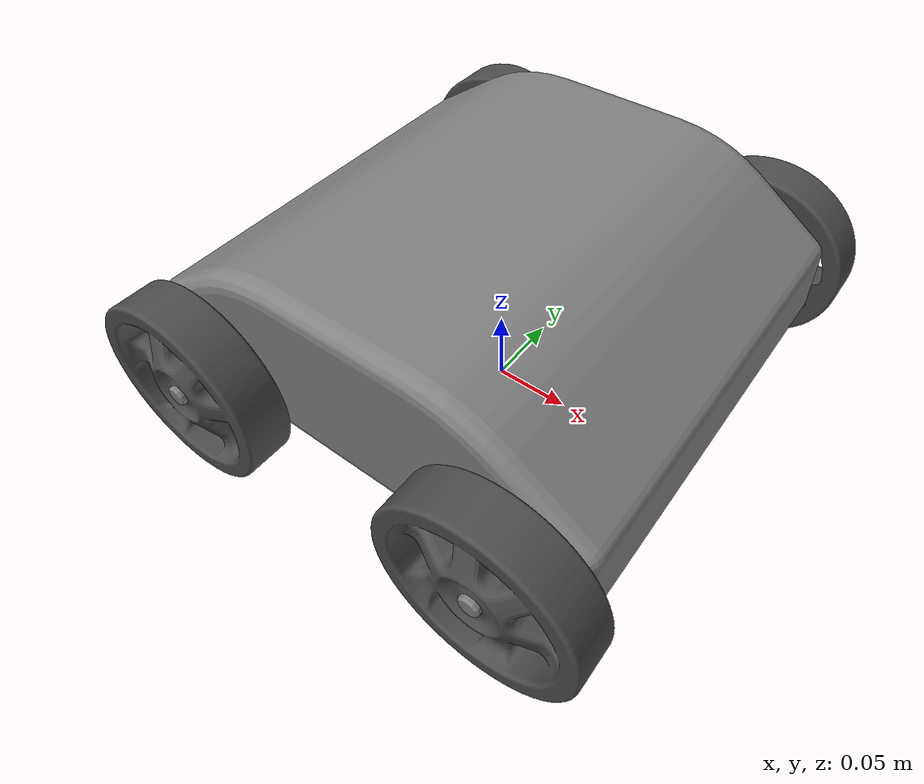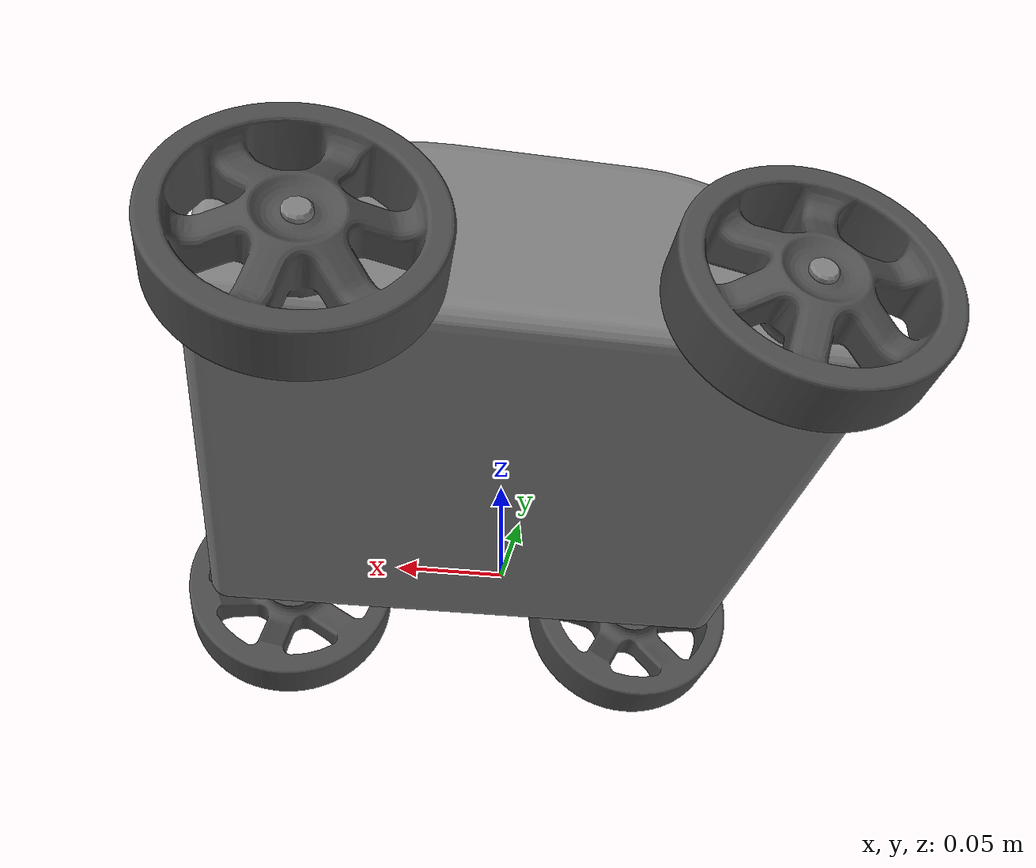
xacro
<?xml version="1.0" encoding="utf-8"?>
<robot
  name="petricor_platform">
  <link
    name="base_link">
    <inertial>
      <origin
        xyz="-4.87809042607272E-17 -2.29618809443724E-17 0.0879972764105627"
        rpy="0 0 0" />
      <mass
        value="5.87636303944341" />
      <inertia
        ixx="0.0760058697508826"
        ixy="1.4007807365218E-17"
        ixz="-4.91658511235952E-18"
        iyy="0.0517448560797098"
        iyz="-9.02756484418171E-19"
        izz="0.113814268741791" />
    </inertial>
    <visual>
      <origin
        xyz="0 0 0"
        rpy="0 0 0" />
      <geometry>
        <mesh
          filename="model://base_link.STL" />
      </geometry>
      <material
        name="">
        <color
          rgba="0.501960784313725 0.501960784313725 0.501960784313725 1" />
      </material>
    </visual>
    <collision>
      <origin
        xyz="0 0 0"
        rpy="0 0 0" />
      <geometry>
        <mesh
          filename="model://base_link.STL" />
      </geometry>
    </collision>
    <self_collide>0</self_collide>
  </link>
  <link
    name="wheel_FL">
    <inertial>
      <origin
        xyz="-0.015313 1.0317E-10 -6.0577E-11"
        rpy="0 0 0" />
      <mass
        value="0.2085" />
      <inertia
        ixx="0.00044907"
        ixy="-3.2704E-13"
        ixz="4.029E-13"
        iyy="0.00023777"
        iyz="-1.0058E-11"
        izz="0.00023777" />
    </inertial>
    <visual>
      <origin
        xyz="0 0 0"
        rpy="0 0 0" />
      <geometry>
        <mesh
          filename="model://wheel_FL.STL" />
      </geometry>
      <material
        name="">
        <color
          rgba="0.29804 0.29804 0.29804 1" />
      </material>
    </visual>
    <collision>
      <origin
        xyz="0 0 0"
        rpy="0 0 0" />
      <geometry>
        <mesh
          filename="model://wheel_FL.STL" />
      </geometry>
      <friction>
        <ode>
          <mu>5.0</mu>
          <mu2>5.0</mu2>
        </ode>
      </friction>
    </collision>
    <self_collide>0</self_collide>
  </link>
  <joint
    name="wheel_FL_rev"
    type="continuous">
    <origin
      xyz="0.10549 0.169 0.061"
      rpy="-0.33421 0 1.5708" />
    <parent
      link="base_link" />
    <child
      link="wheel_FL" />
    <axis
      xyz="-1 0 0" />
    <limit
      lower="0"
      upper="0"
      effort="1000000"
      velocity="1000" />
  </joint>
  <link
    name="wheel_FR">
    <inertial>
      <origin
        xyz="-0.015313 1.0317E-10 -6.0577E-11"
        rpy="0 0 0" />
      <mass
        value="0.2085" />
      <inertia
        ixx="0.00044907"
        ixy="-3.2704E-13"
        ixz="4.029E-13"
        iyy="0.00023777"
        iyz="1.788E-11"
        izz="0.00023777" />
    </inertial>
    <visual>
      <origin
        xyz="0 0 0"
        rpy="0 0 0" />
      <geometry>
        <mesh
          filename="model://wheel_FR.STL" />
      </geometry>
      <material
        name="">
        <color
          rgba="0.29804 0.29804 0.29804 1" />
      </material>
    </visual>
    <collision>
      <origin
        xyz="0 0 0"
        rpy="0 0 0" />
      <geometry>
        <mesh
          filename="model://wheel_FR.STL" />
      </geometry>
      <friction>
        <ode>
          <mu>5.0</mu>
          <mu2>5.0</mu2>
        </ode>
      </friction>
    </collision>
    <self_collide>0</self_collide>
  </link>
  <joint
    name="wheel_FR_rev"
    type="continuous">
    <origin
      xyz="0.10549 -0.169 0.061"
      rpy="-2.9492 0 -1.5708" />
    <parent
      link="base_link" />
    <child
      link="wheel_FR" />
    <axis
      xyz="-1 0 0" />
    <limit
      lower="0"
      upper="0"
      effort="1000000"
      velocity="1000" />
  </joint>
  <link
    name="wheel_BL">
    <inertial>
      <origin
        xyz="-0.015313 1.0317E-10 -6.0577E-11"
        rpy="0 0 0" />
      <mass
        value="0.2085" />
      <inertia
        ixx="0.00044907"
        ixy="-3.2704E-13"
        ixz="4.029E-13"
        iyy="0.00023777"
        iyz="-3.5686E-13"
        izz="0.00023777" />
    </inertial>
    <visual>
      <origin
        xyz="0 0 0"
        rpy="0 0 0" />
      <geometry>
        <mesh
          filename="model://wheel_BL.STL" />
      </geometry>
      <material
        name="">
        <color
          rgba="0.29804 0.29804 0.29804 1" />
      </material>
    </visual>
    <collision>
      <origin
        xyz="0 0 0"
        rpy="0 0 0" />
      <geometry>
        <mesh
          filename="model://wheel_BL.STL" />
      </geometry>
      <friction>
        <ode>
          <mu>5.0</mu>
          <mu2>5.0</mu2>
        </ode>
      </friction>
    </collision>
    <self_collide>0</self_collide>
  </link>
  <joint
    name="wheel_BL_rev"
    type="continuous">
    <origin
      xyz="-0.10549 0.169 0.061"
      rpy="0.82175 0 1.5708" />
    <parent
      link="base_link" />
    <child
      link="wheel_BL" />
    <axis
      xyz="-1 0 0" />
    <limit
      lower="0"
      upper="0"
      effort="1000000"
      velocity="1000" />
  </joint>
  <link
    name="wheel_BR">
    <inertial>
      <origin
        xyz="-0.015313 1.0317E-10 -6.0577E-11"
        rpy="0 0 0" />
      <mass
        value="0.2085" />
      <inertia
        ixx="0.00044907"
        ixy="-3.2704E-13"
        ixz="4.0289E-13"
        iyy="0.00023777"
        iyz="-8.8928E-12"
        izz="0.00023777" />
    </inertial>
    <visual>
      <origin
        xyz="0 0 0"
        rpy="0 0 0" />
      <geometry>
        <mesh
          filename="model://wheel_BR.STL" />
      </geometry>
      <material
        name="">
        <color
          rgba="0.29804 0.29804 0.29804 1" />
      </material>
    </visual>
    <collision>
      <origin
        xyz="0 0 0"
        rpy="0 0 0" />
      <geometry>
        <mesh
          filename="model://wheel_BR.STL" />
      </geometry>
      <friction>
        <ode>
          <mu>5.0</mu>
          <mu2>5.0</mu2>
        </ode>
      </friction>
    </collision>
    <self_collide>0</self_collide>
  </link>
  <joint
    name="wheel_BR_rev"
    type="continuous">
    <origin
      xyz="-0.10549 -0.169 0.061"
      rpy="0.53438 0 -1.5708" />
    <parent
      link="base_link" />
    <child
      link="wheel_BR" />
    <axis
      xyz="-1 0 0" />
    <limit
      lower="0"
      upper="0"
      effort="1000000"
      velocity="1000" />
  </joint>  <ros2_control name="GazeboSystem" type="system">
    <hardware>
      <plugin>gazebo_ros2_control/GazeboSystem</plugin>
    </hardware>

    <joint name="wheel_FL_rev">
      <command_interface name="velocity">
        <param name="min">"-1000"</param>
        <param name="max">"1000"</param>
      </command_interface>
      <state_interface name="position"/>
      <state_interface name="velocity"/>
      <state_interface name="effort"/>
    </joint>

      <joint name="wheel_FR_rev">
      <command_interface name="velocity">
        <param name="min">"-1000"</param>
        <param name="max">"1000"</param>
      </command_interface>
      <state_interface name="position"/>
      <state_interface name="velocity"/>
      <state_interface name="effort"/>
    </joint>

      <joint name="wheel_BL_rev">
      <command_interface name="velocity">
        <param name="min">"-1000"</param>
        <param name="max">"1000"</param>
      </command_interface>
      <state_interface name="position"/>
      <state_interface name="velocity"/>
      <state_interface name="effort"/>
    </joint>

      <joint name="wheel_BR_rev">
      <command_interface name="velocity">
        <param name="min">"-1000"</param>
        <param name="max">"1000"</param>
      </command_interface>
      <state_interface name="position"/>
      <state_interface name="velocity"/>
      <state_interface name="effort"/>
    </joint>
  </ros2_control>

  <gazebo>
    <plugin name="gazebo_ros2_control" filename="libgazebo_ros2_control.so">
     <robot_param>robot_description</robot_param>
      <robot_param_node>robot_state_publisher</robot_param_node>
     <parameters>$(find platform_description)/config/joint_names_platform.yaml</parameters>
    </plugin>
    <!-- 3D Pose publisher (emulate motion capture) -->
    <!-- See: https://github.com/ros-simulation/gazebo_ros_pkgs/wiki/ROS-2-Migration:-P3D -->
    <plugin name="gazebo_ros_p3d" filename="libgazebo_ros_p3d.so">
      <ros>
        <!-- Add namespace and remap the default topic -->
        <namespace>/petricor_platform</namespace>
        <argument>odom:=gazebo_odom</argument>
      </ros>

      <!-- Replace camelCase elements with camel_case ones -->
      <body_name>base_link</body_name>
      <frame_name>world</frame_name>
      <update_rate>50</update_rate> <!-- If set to 0, or don't include, will default to max possible -->
      <xyz_offset>0 0 0</xyz_offset>
      <rpy_offset>0 0 0</rpy_offset>
      <gaussian_noise>0.0001</gaussian_noise>

    </plugin>
  </gazebo>
</robot>
